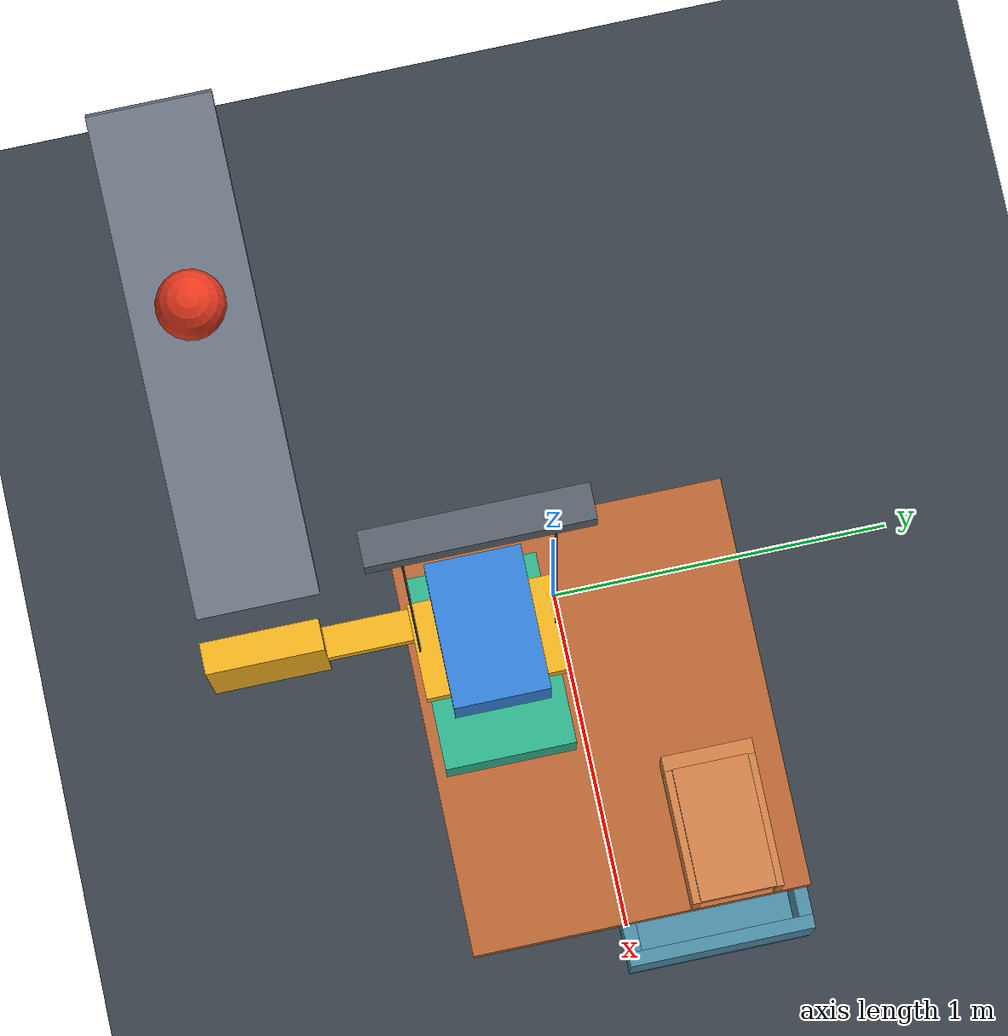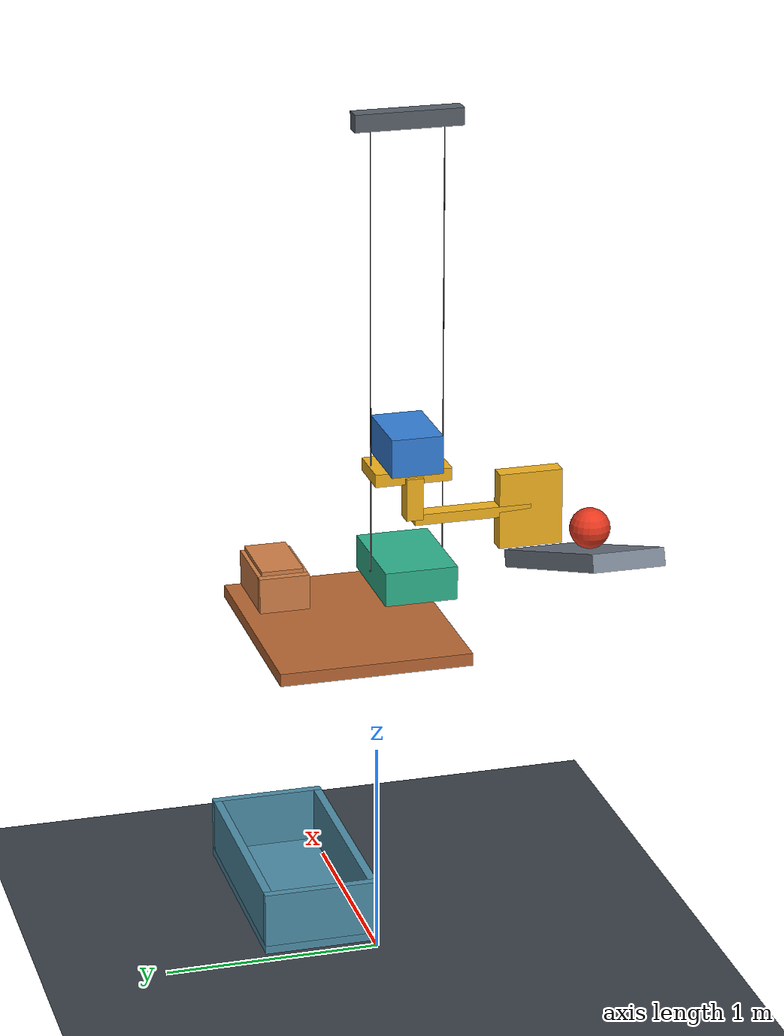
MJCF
<mujoco model="ball_key_bridge_cascade">
  <compiler angle="radian" autolimits="true"/>
  <option timestep="0.002" gravity="0 0 -9.81" integrator="implicitfast" solver="Newton" iterations="100" tolerance="1e-10"/>
  <size njmax="2000" nconmax="300"/>
  <visual>
    <global azimuth="125" elevation="-20"/>
  </visual>

  <worldbody>
    <light name="main_light" pos="-2 -3 6" dir="0.3 0.4 -1" diffuse="0.9 0.9 0.9"/>
    <geom name="floor" type="plane" pos="0 0 0" size="8 8 0.1" friction="1.0 0.02 0.04" condim="6" priority="1" rgba="0.22 0.25 0.28 1"/>

    <!-- The ball lane is separate from the falling bridge lane. -->
    <body name="ramp" pos="-0.474481 -0.8 2.044725" euler="0 0.349066 0">
      <geom name="ramp_surface" type="box" size="0.65 0.16 0.04" friction="0.4 0.003 0.0001" condim="6" priority="1" rgba="0.48 0.52 0.58 1"/>
    </body>

    <!-- Initial surface position is 0.8 m uphill from the ramp's downhill end. -->
    <body name="ball" pos="-0.570972 -0.8 2.219188">
      <freejoint name="ball_free"/>
      <geom name="ball_sphere" type="sphere" size="0.09" mass="1.5" friction="0.4 0.003 0.005" condim="6" solref="0.006 1" rgba="0.9 0.22 0.12 1"/>
    </body>

    <!-- A transverse arm connects the remote striker to the support shelf. -->
    <body name="key" pos="0.4 -0.25 2.2">
      <joint name="key_slide" type="slide" axis="1 0 0" range="0 0.85" damping="0.04" frictionloss="0.015"/>
      <geom name="key_shelf" type="box" size="0.12 0.18 0.03" mass="0.06" friction="0.002 0.001 0.0001" priority="2" solref="0.006 1" rgba="0.95 0.7 0.12 1"/>
      <geom name="key_striker" type="box" pos="-0.1 -0.55 -0.2" size="0.04 0.15 0.18" mass="0.06" friction="0.002 0.001 0.0001" priority="2" solref="0.006 1" rgba="0.95 0.7 0.12 1"/>
      <geom name="key_arm" type="box" pos="-0.1 -0.275 -0.2" size="0.04 0.275 0.025" mass="0.01" friction="0.002 0.001 0.0001" priority="2" solref="0.006 1" rgba="0.95 0.7 0.12 1"/>
      <geom name="key_neck" type="box" pos="-0.1 0 -0.1" size="0.04 0.04 0.1" mass="0.01" friction="0.002 0.001 0.0001" priority="2" solref="0.006 1" rgba="0.95 0.7 0.12 1"/>
    </body>

    <body name="bridge1" pos="0.4 -0.25 2.32">
      <freejoint name="bridge1_free"/>
      <geom name="bridge1_block" type="box" size="0.18 0.12 0.09" mass="2.0" friction="1.6 0.005 0.0001" solref="0.008 1" rgba="0.2 0.5 0.85 1"/>
    </body>

    <!-- The suspension holds bridge2 above the flap until bridge1 lands. -->
    <body name="suspension" pos="0.4 -0.25 3.8">
      <geom name="suspension_bar" type="box" pos="0 0 0.04" size="0.04 0.25 0.04" rgba="0.35 0.38 0.42 1"/>
      <site name="spring_anchor_left" pos="0 -0.17 0" size="0.006" rgba="0.3 0.3 0.3 1"/>
      <site name="spring_anchor_right" pos="0 0.17 0" size="0.006" rgba="0.3 0.3 0.3 1"/>
    </body>

    <body name="bridge2" pos="0.4 -0.25 1.72">
      <freejoint name="bridge2_free"/>
      <geom name="bridge2_block" type="box" size="0.25 0.17 0.08" mass="0.4" friction="1.6 0.005 0.0001" solref="0.008 1" rgba="0.18 0.7 0.55 1"/>
      <site name="spring_attachment_left" pos="0 -0.17 0" size="0.006" rgba="0.3 0.3 0.3 1"/>
      <site name="spring_attachment_right" pos="0 0.17 0" size="0.006" rgba="0.3 0.3 0.3 1"/>
    </body>

    <!-- Negative hinge angles lower the flap; -65 degrees is its lower stop. -->
    <!-- The covered channel is open at the downhill end. -->
    <body name="flap" pos="0 0 1.4">
      <joint name="flap_hinge" type="hinge" axis="0 -1 0" range="-1.134464 0" frictionloss="2.4" damping="0.08" armature="0.001" solreffriction="0.004 1" solimpfriction="0.999 0.9999 0.001" solreflimit="0.006 1"/>
      <geom name="flap_panel" type="box" pos="0.55 0 0" size="0.55 0.45 0.03" mass="0.1" friction="1.6 0.005 0.0001" solref="0.008 1" rgba="0.72 0.4 0.2 1"/>
      <geom name="flap_channel_roof" type="box" pos="0.925 0.25 0.2" size="0.175 0.1 0.02" mass="0.01" friction="1.6 0.005 0.0001" solref="0.008 1" rgba="0.82 0.5 0.28 1"/>
      <geom name="flap_channel_left" type="box" pos="0.925 0.14 0.11" size="0.175 0.01 0.09" mass="0.005" friction="1.6 0.005 0.0001" solref="0.008 1" rgba="0.82 0.5 0.28 1"/>
      <geom name="flap_channel_right" type="box" pos="0.925 0.36 0.11" size="0.175 0.01 0.09" mass="0.005" friction="1.6 0.005 0.0001" solref="0.008 1" rgba="0.82 0.5 0.28 1"/>
      <geom name="flap_channel_back" type="box" pos="0.73 0.25 0.11" size="0.02 0.12 0.09" mass="0.005" friction="1.6 0.005 0.0001" solref="0.008 1" rgba="0.82 0.5 0.28 1"/>
    </body>

    <body name="payload" pos="0.9 0.25 1.495">
      <freejoint name="payload_free"/>
      <geom name="payload_block" type="box" size="0.065 0.065 0.065" mass="0.1" friction="1.6 0.005 0.0001" solref="0.008 1" rgba="0.78 0.2 0.72 1"/>
    </body>

    <body name="bin" pos="0.6 0.25 0">
      <geom name="bin_bottom" type="box" pos="0 0 0.02" size="0.54 0.27 0.02" friction="1.2 0.01 0.001" solref="0.008 1" rgba="0.3 0.55 0.65 1"/>
      <geom name="bin_wall_left" type="box" pos="-0.52 0 0.17" size="0.02 0.27 0.13" friction="1.2 0.01 0.001" rgba="0.3 0.55 0.65 1"/>
      <geom name="bin_wall_right" type="box" pos="0.52 0 0.17" size="0.02 0.27 0.13" friction="1.2 0.01 0.001" rgba="0.3 0.55 0.65 1"/>
      <geom name="bin_wall_front" type="box" pos="0 -0.25 0.17" size="0.5 0.02 0.13" friction="1.2 0.01 0.001" rgba="0.3 0.55 0.65 1"/>
      <geom name="bin_wall_back" type="box" pos="0 0.25 0.17" size="0.5 0.02 0.13" friction="1.2 0.01 0.001" rgba="0.3 0.55 0.65 1"/>
    </body>
  </worldbody>

  <tendon>
    <spatial name="bridge2_spring_left" stiffness="1.5" damping="0.15" springlength="0.772" width="0.0025" rgba="0.2 0.2 0.2 1">
      <site site="spring_anchor_left"/>
      <site site="spring_attachment_left"/>
    </spatial>
    <spatial name="bridge2_spring_right" stiffness="1.5" damping="0.15" springlength="0.772" width="0.0025" rgba="0.2 0.2 0.2 1">
      <site site="spring_anchor_right"/>
      <site site="spring_attachment_right"/>
    </spatial>
  </tendon>

  <keyframe>
    <key name="start" qpos="-0.570972 -0.8 2.219188 1 0 0 0 0 0.4 -0.25 2.32 1 0 0 0 0.4 -0.25 1.72 1 0 0 0 0 0.9 0.25 1.495 1 0 0 0"/>
  </keyframe>
</mujoco>
